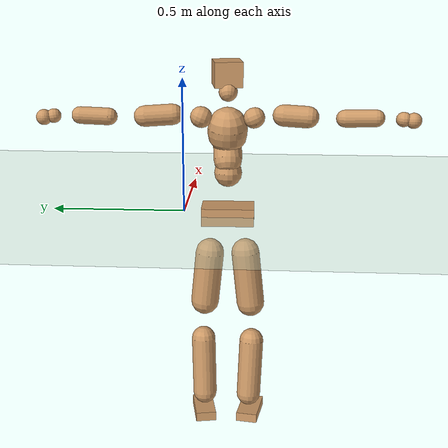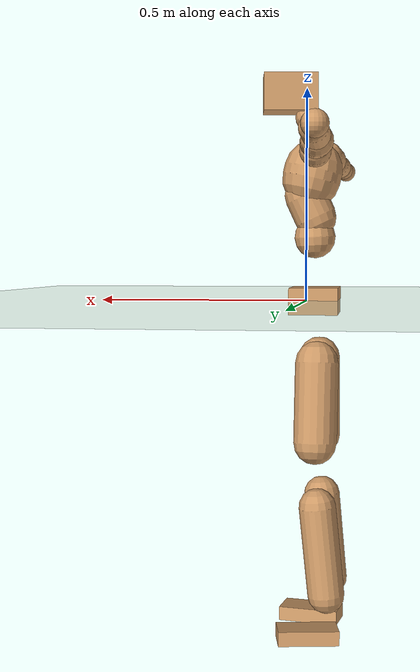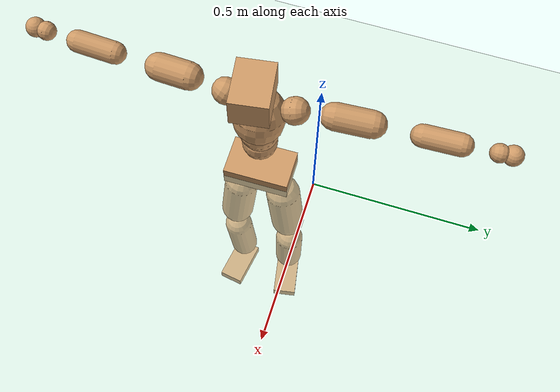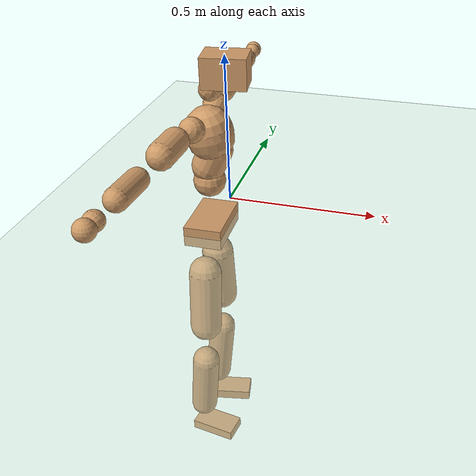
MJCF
<mujoco model="humanoid">
  <compiler coordinate="local" angle="radian"/>
  <default>
    <joint damping="0.0" armature="0.01" stiffness="0.0" limited="true"/>
    <geom conaffinity="1" condim="3" contype="7" margin="0.001" rgba="0.8 0.6 .4 1"/>
  </default>
  <asset>
    <texture type="skybox" builtin="gradient" rgb1=".4 .5 .6" rgb2="0 0 0" width="100" height="100"/>
    <texture builtin="flat" height="1278" mark="cross" markrgb="1 1 1" name="texgeom" random="0.01" rgb1="0.8 0.6 0.4" rgb2="0.8 0.6 0.4" type="cube" width="127"/>
    <texture builtin="checker" height="100" name="texplane" rgb1="0 0 0" rgb2="0.8 0.8 0.8" type="2d" width="100"/>
    <material name="MatPlane" reflectance="0.5" shininess="1" specular="1" texrepeat="60 60" texture="texplane"/>
    <material name="geom" texture="texgeom" texuniform="true"/>
  </asset>
  <worldbody>
    <light cutoff="100" diffuse="1 1 1" dir="-0 0 -1.3" directional="true" exponent="1" pos="0 0 1.3" specular=".1 .1 .1"/>
    <geom conaffinity="1" condim="3" name="floor" pos="0 0 0" rgba="0.8 0.9 0.8 1" size="100 100 .2" type="plane" material="MatPlane"/>
    <body name="Pelvis" pos="-0.0027 -0.1672 0.0073">
      <freejoint name="Pelvis"/>
      <geom type="box" contype="1" conaffinity="1" density="5359.375486" pos="-0.0062 -0.0001 -0.0116" size="0.0604 0.0982 0.0331" quat="1.0000 0.0000 0.0000 0.0090" name="Pelvis"/>
      <body name="L_Hip" pos="-0.0171 0.06 -0.0806">
        <joint name="L_Hip_x" type="hinge" pos="0 0 0" axis="1 0 0" stiffness="1600" damping="160" armature="0.02" range="-180.0000 180.0000"/>
        <joint name="L_Hip_y" type="hinge" pos="0 0 0" axis="0 1 0" stiffness="1600" damping="160" armature="0.02" range="-180.0000 180.0000"/>
        <joint name="L_Hip_z" type="hinge" pos="0 0 0" axis="0 0 1" stiffness="1600" damping="160" armature="0.02" range="-180.0000 180.0000"/>
        <geom type="capsule" contype="1" conaffinity="1" density="2040.816327" size="0.0538" fromto="0.0007 0.0081 -0.0834 0.0024 0.0275 -0.2826" name="L_Hip"/>
        <body name="L_Knee" pos="0.0031 0.0356 -0.366">
          <joint name="L_Knee_x" type="hinge" pos="0 0 0" axis="1 0 0" stiffness="1600" damping="160" armature="0.02" range="-180.0000 180.0000"/>
          <joint name="L_Knee_y" type="hinge" pos="0 0 0" axis="0 1 0" stiffness="1600" damping="160" armature="0.02" range="-180.0000 180.0000"/>
          <joint name="L_Knee_z" type="hinge" pos="0 0 0" axis="0 0 1" stiffness="1600" damping="160" armature="0.02" range="-180.0000 180.0000"/>
          <geom type="capsule" contype="1" conaffinity="1" density="1234.567901" size="0.0464" fromto="-0.0077 -0.0022 -0.0760 -0.0305 -0.0087 -0.3004" name="L_Knee"/>
          <body name="L_Ankle" pos="-0.0382 -0.0109 -0.3764">
            <joint name="L_Ankle_x" type="hinge" pos="0 0 0" axis="1 0 0" stiffness="1600" damping="160" armature="0.02" range="-180.0000 180.0000"/>
            <joint name="L_Ankle_y" type="hinge" pos="0 0 0" axis="0 1 0" stiffness="1600" damping="160" armature="0.02" range="-180.0000 180.0000"/>
            <joint name="L_Ankle_z" type="hinge" pos="0 0 0" axis="0 0 1" stiffness="1600" damping="160" armature="0.02" range="-180.0000 180.0000"/>
            <geom type="box" contype="1" conaffinity="1" density="999.999949" pos="0.0534 0.0099 -0.0256" size="0.0762 0.0396 0.0185" quat="0.9958 0.0000 0.0000 0.0911" name="L_Ankle"/>
            <body name="L_Toe" pos="0.1068 0.0197 -0.0512">
              <joint name="L_Toe_x" type="hinge" pos="0 0 0" axis="1 0 0" stiffness="1000" damping="100" armature="0.02" range="-180.0000 180.0000"/>
              <joint name="L_Toe_y" type="hinge" pos="0 0 0" axis="0 1 0" stiffness="1000" damping="100" armature="0.02" range="-180.0000 180.0000"/>
              <joint name="L_Toe_z" type="hinge" pos="0 0 0" axis="0 0 1" stiffness="1000" damping="100" armature="0.02" range="-180.0000 180.0000"/>
              <geom type="box" contype="1" conaffinity="1" density="8652299.771756" pos="0.0000 0.0000 0.0255" size="0.0008 0.002 0.0009" quat="0.9952 0.0000 0.0000 0.0983" name="L_Toe"/>
            </body>
          </body>
        </body>
      </body>
      <body name="R_Hip" pos="-0.0133 -0.0592 -0.0791">
        <joint name="R_Hip_x" type="hinge" pos="0 0 0" axis="1 0 0" stiffness="1600" damping="160" armature="0.02" range="-180.0000 180.0000"/>
        <joint name="R_Hip_y" type="hinge" pos="0 0 0" axis="0 1 0" stiffness="1600" damping="160" armature="0.02" range="-180.0000 180.0000"/>
        <joint name="R_Hip_z" type="hinge" pos="0 0 0" axis="0 0 1" stiffness="1600" damping="160" armature="0.02" range="-180.0000 180.0000"/>
        <geom type="capsule" contype="1" conaffinity="1" density="2040.816327" size="0.0531" fromto="-0.0000 -0.0087 -0.0827 -0.0001 -0.0306 -0.2898" name="R_Hip"/>
        <body name="R_Knee" pos="-0.0001 -0.0393 -0.3724">
          <joint name="R_Knee_x" type="hinge" pos="0 0 0" axis="1 0 0" stiffness="1600" damping="160" armature="0.02" range="-180.0000 180.0000"/>
          <joint name="R_Knee_y" type="hinge" pos="0 0 0" axis="0 1 0" stiffness="1600" damping="160" armature="0.02" range="-180.0000 180.0000"/>
          <joint name="R_Knee_z" type="hinge" pos="0 0 0" axis="0 0 1" stiffness="1600" damping="160" armature="0.02" range="-180.0000 180.0000"/>
          <geom type="capsule" contype="1" conaffinity="1" density="1234.567901" size="0.0467" fromto="-0.0072 0.0029 -0.0763 -0.0283 0.0113 -0.2991" name="R_Knee"/>
          <body name="R_Ankle" pos="-0.0355 0.0141 -0.3755">
            <joint name="R_Ankle_x" type="hinge" pos="0 0 0" axis="1 0 0" stiffness="1600" damping="160" armature="0.02" range="-180.0000 180.0000"/>
            <joint name="R_Ankle_y" type="hinge" pos="0 0 0" axis="0 1 0" stiffness="1600" damping="160" armature="0.02" range="-180.0000 180.0000"/>
            <joint name="R_Ankle_z" type="hinge" pos="0 0 0" axis="0 0 1" stiffness="1600" damping="160" armature="0.02" range="-180.0000 180.0000"/>
            <geom type="box" contype="1" conaffinity="1" density="999.999978" pos="0.0546 -0.0085 -0.0221" size="0.0774 0.0409 0.018" quat="0.9970 0.0000 0.0000 -0.0772" name="R_Ankle"/>
            <body name="R_Toe" pos="0.1091 -0.017 -0.0441">
              <joint name="R_Toe_x" type="hinge" pos="0 0 0" axis="1 0 0" stiffness="1000" damping="100" armature="0.02" range="-180.0000 180.0000"/>
              <joint name="R_Toe_y" type="hinge" pos="0 0 0" axis="0 1 0" stiffness="1000" damping="100" armature="0.02" range="-180.0000 180.0000"/>
              <joint name="R_Toe_z" type="hinge" pos="0 0 0" axis="0 0 1" stiffness="1000" damping="100" armature="0.02" range="-180.0000 180.0000"/>
              <geom type="box" contype="1" conaffinity="1" density="8735868.877192" pos="0.0000 0.0000 0.0231" size="0.0008 0.002 0.001" quat="0.9977 0.0000 0.0000 -0.0671" name="R_Toe"/>
            </body>
          </body>
        </body>
      </body>
      <body name="Torso" pos="-0.0069 -0.0015 0.09">
        <joint name="Torso_x" type="hinge" pos="0 0 0" axis="1 0 0" stiffness="2000" damping="200" armature="0.02" range="-180.0000 180.0000"/>
        <joint name="Torso_y" type="hinge" pos="0 0 0" axis="0 1 0" stiffness="2000" damping="200" armature="0.02" range="-180.0000 180.0000"/>
        <joint name="Torso_z" type="hinge" pos="0 0 0" axis="0 0 1" stiffness="2000" damping="200" armature="0.02" range="-180.0000 180.0000"/>
        <geom type="capsule" contype="1" conaffinity="1" density="2040.816327" size="0.0513" fromto="0.0020 0.0015 0.0559 0.0021 0.0015 0.0579" name="Torso"/>
        <body name="Spine" pos="0.0041 0.003 0.1138">
          <joint name="Spine_x" type="hinge" pos="0 0 0" axis="1 0 0" stiffness="2000" damping="200" armature="0.02" range="-180.0000 180.0000"/>
          <joint name="Spine_y" type="hinge" pos="0 0 0" axis="0 1 0" stiffness="2000" damping="200" armature="0.02" range="-180.0000 180.0000"/>
          <joint name="Spine_z" type="hinge" pos="0 0 0" axis="0 0 1" stiffness="2000" damping="200" armature="0.02" range="-180.0000 180.0000"/>
          <geom type="capsule" contype="1" conaffinity="1" density="2040.816327" size="0.053" fromto="0.0221 0.0028 0.0481 -0.0031 -0.0004 -0.0068" name="Spine"/>
          <body name="Chest" pos="0.019 0.0024 0.0413">
            <joint name="Chest_x" type="hinge" pos="0 0 0" axis="1 0 0" stiffness="2000" damping="200" armature="0.02" range="-180.0000 180.0000"/>
            <joint name="Chest_y" type="hinge" pos="0 0 0" axis="0 1 0" stiffness="2000" damping="200" armature="0.02" range="-180.0000 180.0000"/>
            <joint name="Chest_z" type="hinge" pos="0 0 0" axis="0 0 1" stiffness="2000" damping="200" armature="0.02" range="-180.0000 180.0000"/>
            <geom type="capsule" contype="1" conaffinity="1" density="2040.816327" size="0.0732" fromto="-0.0165 -0.0015 0.0713 -0.0110 -0.0010 0.0475" name="Chest"/>
            <body name="Neck" pos="-0.0288 -0.0049 0.1681">
              <joint name="Neck_x" type="hinge" pos="0 0 0" axis="1 0 0" stiffness="1000" damping="100" armature="0.02" range="-180.0000 180.0000"/>
              <joint name="Neck_y" type="hinge" pos="0 0 0" axis="0 1 0" stiffness="1000" damping="100" armature="0.02" range="-180.0000 180.0000"/>
              <joint name="Neck_z" type="hinge" pos="0 0 0" axis="0 0 1" stiffness="1000" damping="100" armature="0.02" range="-180.0000 180.0000"/>
              <geom type="capsule" contype="1" conaffinity="1" density="1000" size="0.0344" fromto="0.0228 0.0026 0.0291 0.0240 0.0027 0.0307" name="Neck"/>
              <body name="Head" pos="0.0468 0.0053 0.0598">
                <joint name="Head_x" type="hinge" pos="0 0 0" axis="1 0 0" stiffness="1000" damping="100" armature="0.02" range="-180.0000 180.0000"/>
                <joint name="Head_y" type="hinge" pos="0 0 0" axis="0 1 0" stiffness="1000" damping="100" armature="0.02" range="-180.0000 180.0000"/>
                <joint name="Head_z" type="hinge" pos="0 0 0" axis="0 0 1" stiffness="1000" damping="100" armature="0.02" range="-180.0000 180.0000"/>
                <geom type="box" contype="1" conaffinity="1" density="2249.999844" pos="0.0244 0.0036 0.0309" size="0.0667 0.0516 0.0458" quat="0.9973 0.0000 0.0000 0.0740" name="Head"/>
              </body>
            </body>
            <body name="L_Thorax" pos="-0.0256 0.0599 0.0945">
              <joint name="L_Thorax_x" type="hinge" pos="0 0 0" axis="1 0 0" stiffness="1000" damping="100" armature="0.02" range="-180.0000 180.0000"/>
              <joint name="L_Thorax_y" type="hinge" pos="0 0 0" axis="0 1 0" stiffness="1000" damping="100" armature="0.02" range="-180.0000 180.0000"/>
              <joint name="L_Thorax_z" type="hinge" pos="0 0 0" axis="0 0 1" stiffness="1000" damping="100" armature="0.02" range="-180.0000 180.0000"/>
              <geom type="capsule" contype="1" conaffinity="1" density="1000" size="0.039" fromto="-0.0021 0.0360 0.0149 -0.0020 0.0337 0.0140" name="L_Thorax"/>
              <body name="L_Shoulder" pos="-0.004 0.0697 0.0289">
                <joint name="L_Shoulder_x" type="hinge" pos="0 0 0" axis="1 0 0" stiffness="1000" damping="100" armature="0.02" range="-720.0000 720.0000"/>
                <joint name="L_Shoulder_y" type="hinge" pos="0 0 0" axis="0 1 0" stiffness="1000" damping="100" armature="0.02" range="-720.0000 720.0000"/>
                <joint name="L_Shoulder_z" type="hinge" pos="0 0 0" axis="0 0 1" stiffness="1000" damping="100" armature="0.02" range="-720.0000 720.0000"/>
                <geom type="capsule" contype="1" conaffinity="1" density="1000" size="0.0381" fromto="-0.0066 0.0677 -0.0039 -0.0167 0.1702 -0.0098" name="L_Shoulder"/>
                <body name="L_Elbow" pos="-0.0233 0.2378 -0.0137">
                  <joint name="L_Elbow_x" type="hinge" pos="0 0 0" axis="1 0 0" stiffness="1000" damping="100" armature="0.02" range="-720.0000 720.0000"/>
                  <joint name="L_Elbow_y" type="hinge" pos="0 0 0" axis="0 1 0" stiffness="1000" damping="100" armature="0.02" range="-720.0000 720.0000"/>
                  <joint name="L_Elbow_z" type="hinge" pos="0 0 0" axis="0 0 1" stiffness="1000" damping="100" armature="0.02" range="-720.0000 720.0000"/>
                  <geom type="capsule" contype="1" conaffinity="1" density="1000" size="0.0314" fromto="-0.0010 0.0614 0.0025 -0.0026 0.1651 0.0066" name="L_Elbow"/>
                  <body name="L_Wrist" pos="-0.0036 0.2264 0.009">
                    <joint name="L_Wrist_x" type="hinge" pos="0 0 0" axis="1 0 0" stiffness="600" damping="60" armature="0.02" range="-180.0000 180.0000"/>
                    <joint name="L_Wrist_y" type="hinge" pos="0 0 0" axis="0 1 0" stiffness="600" damping="60" armature="0.02" range="-180.0000 180.0000"/>
                    <joint name="L_Wrist_z" type="hinge" pos="0 0 0" axis="0 0 1" stiffness="600" damping="60" armature="0.02" range="-180.0000 180.0000"/>
                    <geom type="capsule" contype="1" conaffinity="1" density="1000" size="0.0259" fromto="-0.0059 0.0341 -0.0043 -0.0062 0.0360 -0.0046" name="L_Wrist"/>
                    <body name="L_Hand" pos="-0.0121 0.0701 -0.0089">
                      <joint name="L_Hand_x" type="hinge" pos="0 0 0" axis="1 0 0" stiffness="600" damping="60" armature="0.02" range="-180.0000 180.0000"/>
                      <joint name="L_Hand_y" type="hinge" pos="0 0 0" axis="0 1 0" stiffness="600" damping="60" armature="0.02" range="-180.0000 180.0000"/>
                      <joint name="L_Hand_z" type="hinge" pos="0 0 0" axis="0 0 1" stiffness="600" damping="60" armature="0.02" range="-180.0000 180.0000"/>
                      <geom type="sphere" contype="1" conaffinity="1" density="1000" size="0.0282" pos="0.0000 0.0000 0.0000" name="L_Hand"/>
                    </body>
                  </body>
                </body>
              </body>
            </body>
            <body name="R_Thorax" pos="-0.0281 -0.0626 0.094">
              <joint name="R_Thorax_x" type="hinge" pos="0 0 0" axis="1 0 0" stiffness="1000" damping="100" armature="0.02" range="-180.0000 180.0000"/>
              <joint name="R_Thorax_y" type="hinge" pos="0 0 0" axis="0 1 0" stiffness="1000" damping="100" armature="0.02" range="-180.0000 180.0000"/>
              <joint name="R_Thorax_z" type="hinge" pos="0 0 0" axis="0 0 1" stiffness="1000" damping="100" armature="0.02" range="-180.0000 180.0000"/>
              <geom type="capsule" contype="1" conaffinity="1" density="1000" size="0.038" fromto="-0.0029 -0.0353 0.0144 -0.0030 -0.0371 0.0152" name="R_Thorax"/>
              <body name="R_Shoulder" pos="-0.0059 -0.0723 0.0296">
                <joint name="R_Shoulder_x" type="hinge" pos="0 0 0" axis="1 0 0" stiffness="1000" damping="100" armature="0.02" range="-720.0000 720.0000"/>
                <joint name="R_Shoulder_y" type="hinge" pos="0 0 0" axis="0 1 0" stiffness="1000" damping="100" armature="0.02" range="-720.0000 720.0000"/>
                <joint name="R_Shoulder_z" type="hinge" pos="0 0 0" axis="0 0 1" stiffness="1000" damping="100" armature="0.02" range="-720.0000 720.0000"/>
                <geom type="capsule" contype="1" conaffinity="1" density="1000" size="0.0393" fromto="-0.0047 -0.0690 -0.0034 -0.0107 -0.1573 -0.0077" name="R_Shoulder"/>
                <body name="R_Elbow" pos="-0.0153 -0.2263 -0.0111">
                  <joint name="R_Elbow_x" type="hinge" pos="0 0 0" axis="1 0 0" stiffness="1000" damping="100" armature="0.02" range="-720.0000 720.0000"/>
                  <joint name="R_Elbow_y" type="hinge" pos="0 0 0" axis="0 1 0" stiffness="1000" damping="100" armature="0.02" range="-720.0000 720.0000"/>
                  <joint name="R_Elbow_z" type="hinge" pos="0 0 0" axis="0 0 1" stiffness="1000" damping="100" armature="0.02" range="-720.0000 720.0000"/>
                  <geom type="capsule" contype="1" conaffinity="1" density="1000" size="0.0315" fromto="-0.0021 -0.0614 0.0014 -0.0059 -0.1710 0.0040" name="R_Elbow"/>
                  <body name="R_Wrist" pos="-0.008 -0.2324 0.0054">
                    <joint name="R_Wrist_x" type="hinge" pos="0 0 0" axis="1 0 0" stiffness="600" damping="60" armature="0.02" range="-180.0000 180.0000"/>
                    <joint name="R_Wrist_y" type="hinge" pos="0 0 0" axis="0 1 0" stiffness="600" damping="60" armature="0.02" range="-180.0000 180.0000"/>
                    <joint name="R_Wrist_z" type="hinge" pos="0 0 0" axis="0 0 1" stiffness="600" damping="60" armature="0.02" range="-180.0000 180.0000"/>
                    <geom type="capsule" contype="1" conaffinity="1" density="1000" size="0.0265" fromto="-0.0044 -0.0340 -0.0032 -0.0047 -0.0360 -0.0033" name="R_Wrist"/>
                    <body name="R_Hand" pos="-0.0091 -0.07 -0.0065">
                      <joint name="R_Hand_x" type="hinge" pos="0 0 0" axis="1 0 0" stiffness="600" damping="60" armature="0.02" range="-180.0000 180.0000"/>
                      <joint name="R_Hand_y" type="hinge" pos="0 0 0" axis="0 1 0" stiffness="600" damping="60" armature="0.02" range="-180.0000 180.0000"/>
                      <joint name="R_Hand_z" type="hinge" pos="0 0 0" axis="0 0 1" stiffness="600" damping="60" armature="0.02" range="-180.0000 180.0000"/>
                      <geom type="sphere" contype="1" conaffinity="1" density="1000" size="0.0281" pos="0.0000 0.0000 0.0000" name="R_Hand"/>
                    </body>
                  </body>
                </body>
              </body>
            </body>
          </body>
        </body>
      </body>
    </body>
  </worldbody>
  <actuator>
    <motor name="L_Hip_x" joint="L_Hip_x" gear="500"/>
    <motor name="L_Hip_y" joint="L_Hip_y" gear="500"/>
    <motor name="L_Hip_z" joint="L_Hip_z" gear="500"/>
    <motor name="L_Knee_x" joint="L_Knee_x" gear="500"/>
    <motor name="L_Knee_y" joint="L_Knee_y" gear="500"/>
    <motor name="L_Knee_z" joint="L_Knee_z" gear="500"/>
    <motor name="L_Ankle_x" joint="L_Ankle_x" gear="500"/>
    <motor name="L_Ankle_y" joint="L_Ankle_y" gear="500"/>
    <motor name="L_Ankle_z" joint="L_Ankle_z" gear="500"/>
    <motor name="L_Toe_x" joint="L_Toe_x" gear="500"/>
    <motor name="L_Toe_y" joint="L_Toe_y" gear="500"/>
    <motor name="L_Toe_z" joint="L_Toe_z" gear="500"/>
    <motor name="R_Hip_x" joint="R_Hip_x" gear="500"/>
    <motor name="R_Hip_y" joint="R_Hip_y" gear="500"/>
    <motor name="R_Hip_z" joint="R_Hip_z" gear="500"/>
    <motor name="R_Knee_x" joint="R_Knee_x" gear="500"/>
    <motor name="R_Knee_y" joint="R_Knee_y" gear="500"/>
    <motor name="R_Knee_z" joint="R_Knee_z" gear="500"/>
    <motor name="R_Ankle_x" joint="R_Ankle_x" gear="500"/>
    <motor name="R_Ankle_y" joint="R_Ankle_y" gear="500"/>
    <motor name="R_Ankle_z" joint="R_Ankle_z" gear="500"/>
    <motor name="R_Toe_x" joint="R_Toe_x" gear="500"/>
    <motor name="R_Toe_y" joint="R_Toe_y" gear="500"/>
    <motor name="R_Toe_z" joint="R_Toe_z" gear="500"/>
    <motor name="Torso_x" joint="Torso_x" gear="500"/>
    <motor name="Torso_y" joint="Torso_y" gear="500"/>
    <motor name="Torso_z" joint="Torso_z" gear="500"/>
    <motor name="Spine_x" joint="Spine_x" gear="500"/>
    <motor name="Spine_y" joint="Spine_y" gear="500"/>
    <motor name="Spine_z" joint="Spine_z" gear="500"/>
    <motor name="Chest_x" joint="Chest_x" gear="500"/>
    <motor name="Chest_y" joint="Chest_y" gear="500"/>
    <motor name="Chest_z" joint="Chest_z" gear="500"/>
    <motor name="Neck_x" joint="Neck_x" gear="500"/>
    <motor name="Neck_y" joint="Neck_y" gear="500"/>
    <motor name="Neck_z" joint="Neck_z" gear="500"/>
    <motor name="Head_x" joint="Head_x" gear="500"/>
    <motor name="Head_y" joint="Head_y" gear="500"/>
    <motor name="Head_z" joint="Head_z" gear="500"/>
    <motor name="L_Thorax_x" joint="L_Thorax_x" gear="500"/>
    <motor name="L_Thorax_y" joint="L_Thorax_y" gear="500"/>
    <motor name="L_Thorax_z" joint="L_Thorax_z" gear="500"/>
    <motor name="L_Shoulder_x" joint="L_Shoulder_x" gear="500"/>
    <motor name="L_Shoulder_y" joint="L_Shoulder_y" gear="500"/>
    <motor name="L_Shoulder_z" joint="L_Shoulder_z" gear="500"/>
    <motor name="L_Elbow_x" joint="L_Elbow_x" gear="500"/>
    <motor name="L_Elbow_y" joint="L_Elbow_y" gear="500"/>
    <motor name="L_Elbow_z" joint="L_Elbow_z" gear="500"/>
    <motor name="L_Wrist_x" joint="L_Wrist_x" gear="500"/>
    <motor name="L_Wrist_y" joint="L_Wrist_y" gear="500"/>
    <motor name="L_Wrist_z" joint="L_Wrist_z" gear="500"/>
    <motor name="L_Hand_x" joint="L_Hand_x" gear="500"/>
    <motor name="L_Hand_y" joint="L_Hand_y" gear="500"/>
    <motor name="L_Hand_z" joint="L_Hand_z" gear="500"/>
    <motor name="R_Thorax_x" joint="R_Thorax_x" gear="500"/>
    <motor name="R_Thorax_y" joint="R_Thorax_y" gear="500"/>
    <motor name="R_Thorax_z" joint="R_Thorax_z" gear="500"/>
    <motor name="R_Shoulder_x" joint="R_Shoulder_x" gear="500"/>
    <motor name="R_Shoulder_y" joint="R_Shoulder_y" gear="500"/>
    <motor name="R_Shoulder_z" joint="R_Shoulder_z" gear="500"/>
    <motor name="R_Elbow_x" joint="R_Elbow_x" gear="500"/>
    <motor name="R_Elbow_y" joint="R_Elbow_y" gear="500"/>
    <motor name="R_Elbow_z" joint="R_Elbow_z" gear="500"/>
    <motor name="R_Wrist_x" joint="R_Wrist_x" gear="500"/>
    <motor name="R_Wrist_y" joint="R_Wrist_y" gear="500"/>
    <motor name="R_Wrist_z" joint="R_Wrist_z" gear="500"/>
    <motor name="R_Hand_x" joint="R_Hand_x" gear="500"/>
    <motor name="R_Hand_y" joint="R_Hand_y" gear="500"/>
    <motor name="R_Hand_z" joint="R_Hand_z" gear="500"/>
  </actuator>
  <contact>
    <exclude body1="Torso" body2="Chest"/>
    <exclude body1="Head" body2="Chest"/>
    <exclude body1="R_Knee" body2="R_Toe"/>
    <exclude body1="R_Knee" body2="L_Ankle"/>
    <exclude body1="R_Knee" body2="L_Toe"/>
    <exclude body1="L_Knee" body2="L_Toe"/>
    <exclude body1="L_Knee" body2="R_Ankle"/>
    <exclude body1="L_Knee" body2="R_Toe"/>
    <exclude body1="L_Shoulder" body2="Chest"/>
    <exclude body1="R_Shoulder" body2="Chest"/>
  </contact>
  <sensor/>
  <size njmax="700" nconmax="700"/>
</mujoco>
